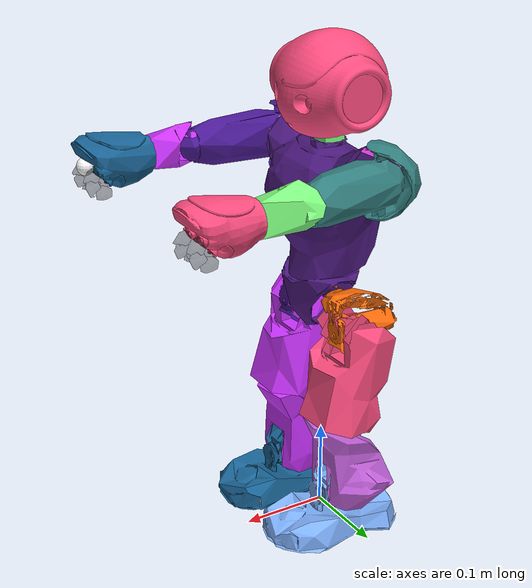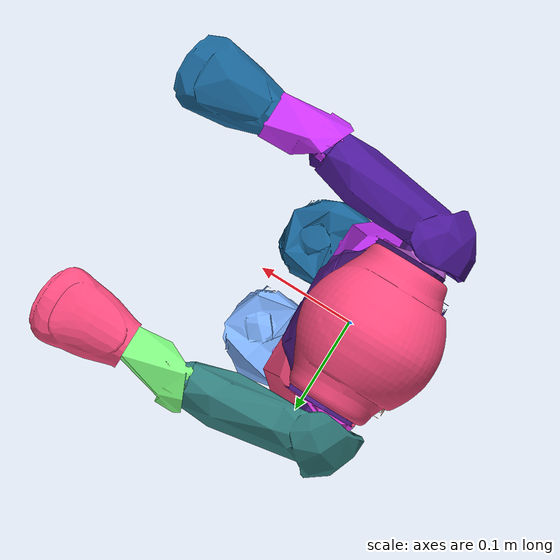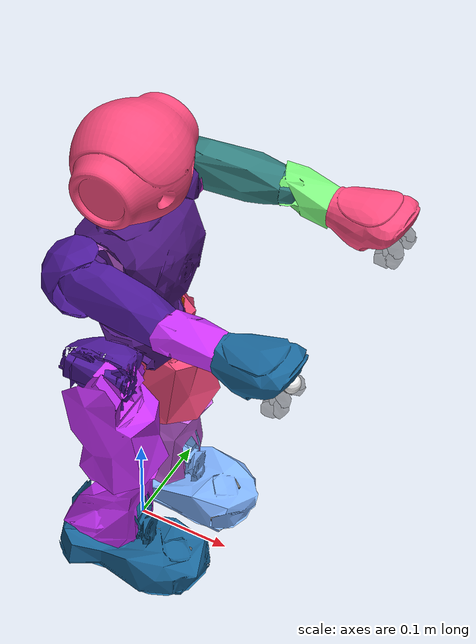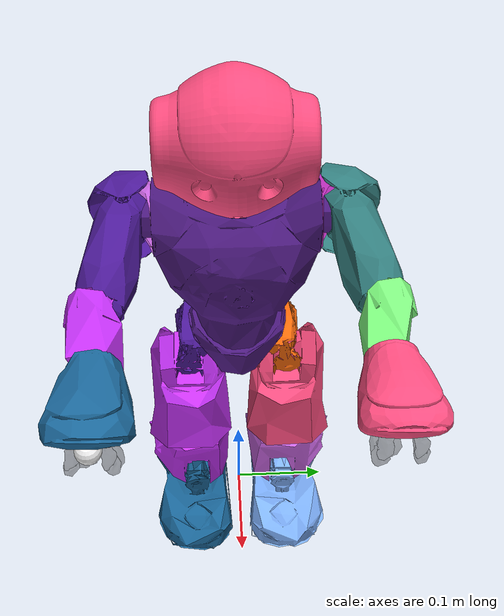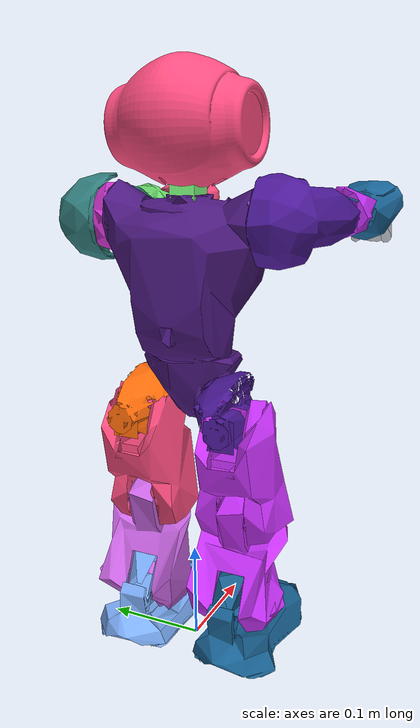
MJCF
<mujoco model="nao">
    <compiler angle="radian" meshdir="./meshes/V40/" autolimits="true" discardvisual="false"/>
    <statistic meansize="0.144785" extent="1.23314" center="0.025392 2.0634e-05 -0.245975"/>
    <default>
        <joint damping="0.5" armature="0.01" frictionloss="0.1"/>
    </default>
    <asset>
        <mesh name="Torso_0.10" file="Torso_0.10.stl" scale="0.1 0.1 0.1" />
        <mesh name="HeadYaw_0.10" file="HeadYaw_0.10.stl" scale="0.1 0.1 0.1" />
        <mesh name="HeadPitch_0.10" file="HeadPitch_0.10.stl" scale="0.1 0.1 0.1" />
        <mesh name="LHipYawPitch_0.10" file="LHipYawPitch_0.10.stl" scale="0.1 0.1 0.1" />
        <mesh name="LHipRoll_0.10" file="LHipRoll_0.10.stl" scale="0.1 0.1 0.1" />
        <mesh name="LHipPitch_0.10" file="LHipPitch_0.10.stl" scale="0.1 0.1 0.1" />
        <mesh name="LKneePitch_0.10" file="LKneePitch_0.10.stl" scale="0.1 0.1 0.1" />
        <mesh name="LAnklePitch_0.10" file="LAnklePitch_0.10.stl" scale="0.1 0.1 0.1" />
        <mesh name="LAnkleRoll_0.10" file="LAnkleRoll_0.10.stl" scale="0.1 0.1 0.1" />
        <mesh name="RHipYawPitch_0.10" file="RHipYawPitch_0.10.stl" scale="0.1 0.1 0.1" />
        <mesh name="RHipRoll_0.10" file="RHipRoll_0.10.stl" scale="0.1 0.1 0.1" />
        <mesh name="RHipPitch_0.10" file="RHipPitch_0.10.stl" scale="0.1 0.1 0.1" />
        <mesh name="RKneePitch_0.10" file="RKneePitch_0.10.stl" scale="0.1 0.1 0.1" />
        <mesh name="RAnklePitch_0.10" file="RAnklePitch_0.10.stl" scale="0.1 0.1 0.1" />
        <mesh name="RAnkleRoll_0.10" file="RAnkleRoll_0.10.stl" scale="0.1 0.1 0.1" />
        <mesh name="LShoulderPitch_0.10" file="LShoulderPitch_0.10.stl" scale="0.1 0.1 0.1" />
        <mesh name="LShoulderRoll_0.10" file="LShoulderRoll_0.10.stl" scale="0.1 0.1 0.1" />
        <mesh name="LElbowRoll_0.10" file="LElbowRoll_0.10.stl" scale="0.1 0.1 0.1" />
        <mesh name="LWristYaw_0.10" file="LWristYaw_0.10.stl" scale="0.1 0.1 0.1" />
        <mesh name="LFinger21_0.10" file="LFinger21_0.10.stl" scale="0.1 0.1 0.1" />
        <mesh name="LFinger22_0.10" file="LFinger22_0.10.stl" scale="0.1 0.1 0.1" />
        <mesh name="LFinger23_0.10" file="LFinger23_0.10.stl" scale="0.1 0.1 0.1" />
        <mesh name="LFinger11_0.10" file="LFinger11_0.10.stl" scale="0.1 0.1 0.1" />
        <mesh name="LFinger12_0.10" file="LFinger12_0.10.stl" scale="0.1 0.1 0.1" />
        <mesh name="LFinger13_0.10" file="LFinger13_0.10.stl" scale="0.1 0.1 0.1" />
        <mesh name="LThumb1_0.10" file="LThumb1_0.10.stl" scale="0.1 0.1 0.1" />
        <mesh name="LThumb2_0.10" file="LThumb2_0.10.stl" scale="0.1 0.1 0.1" />
        <mesh name="RShoulderPitch_0.10" file="RShoulderPitch_0.10.stl" scale="0.1 0.1 0.1" />
        <mesh name="RShoulderRoll_0.10" file="RShoulderRoll_0.10.stl" scale="0.1 0.1 0.1" />
        <mesh name="RElbowRoll_0.10" file="RElbowRoll_0.10.stl" scale="0.1 0.1 0.1" />
        <mesh name="RWristYaw_0.10" file="RWristYaw_0.10.stl" scale="0.1 0.1 0.1" />
        <mesh name="RFinger21_0.10" file="RFinger21_0.10.stl" scale="0.1 0.1 0.1" />
        <mesh name="RFinger22_0.10" file="RFinger22_0.10.stl" scale="0.1 0.1 0.1" />
        <mesh name="RFinger23_0.10" file="RFinger23_0.10.stl" scale="0.1 0.1 0.1" />
        <mesh name="RFinger11_0.10" file="RFinger11_0.10.stl" scale="0.1 0.1 0.1" />
        <mesh name="RFinger12_0.10" file="RFinger12_0.10.stl" scale="0.1 0.1 0.1" />
        <mesh name="RFinger13_0.10" file="RFinger13_0.10.stl" scale="0.1 0.1 0.1" />
        <mesh name="RThumb1_0.10" file="RThumb1_0.10.stl" scale="0.1 0.1 0.1" />
        <mesh name="RThumb2_0.10" file="RThumb2_0.10.stl" scale="0.1 0.1 0.1" />
        <texture builtin="checker" height="100" name="texplane" rgb1="0 0 0" rgb2="0.8 0.8 0.8" type="2d" width="100"/>
        <material name="MatPlane" reflectance="0.5" shininess="1" specular="1" texrepeat="60 60" texture="texplane"/>
    </asset>
    <worldbody>
        <body name="torso" pos="0 0 0.335" >
        <inertial pos="0.00370371 -4.6229e-05 0.0443536" quat="0.999942 -6.0823e-05 -0.0105352 0.00208575" mass="9.12902" diaginertia="0.0307424 0.0269618 0.0139481" />
        <joint type="free"/>
        <geom type="mesh" rgba="0.3 0.1 0.5 1" mesh="Torso_0.10" name="torso"/>
        <site name="imu" pos="0 0 0"/>
        <body name="Neck" pos="0 0 0.1265" >
            <inertial pos="8.30672e-09 -1.22139e-08 0.000122854" quat="0 0.707107 0 0.707107" mass="0.090746" diaginertia="1.15255e-05 8.6441e-06 8.6441e-06" />
            <joint name="HeadYaw" pos="0 0 0" axis="0 0 1" limited="true" range="-2.08567 2.08567" />
            <geom type="mesh" rgba="0.5 1 0.5 1" mesh="HeadYaw_0.10" />
            <body name="Head" pos="0 0 0">
                <inertial pos="-0.000379894 -4.82308e-05 0.0560861" quat="0.562244 0.562237 -0.42882 0.428818" mass="5.25935" diaginertia="0.0088094 0.00839445 0.00702492" />
                <joint name="HeadPitch" pos="0 0 0" axis="0 1 0" limited="true" range="-0.671952 0.514872" />
                <geom type="mesh" rgba="1 0.3 0.5 1" mesh="HeadPitch_0.10" />
                <body name="gaze" pos="0.05871 0 0.06364">
                    <inertial pos="0.05871 0 0.06364" mass="0" diaginertia="0 0 0" />
                </body>
                <body name="HeadTouchFront_frame" pos="0.0312 0 0.1014" quat="0.82924 0 -0.558893 0">
                    <inertial pos="0.0312 0 0.1014" quat="0.82924 0 -0.558893 0" mass="0" diaginertia="0 0 0" />
                </body>
                <body name="CameraBottom_frame" pos="0.05071 0 0.01774" quat="0.940585 0 0.339559 0">
                    <inertial pos="0.05071 0 0.01774" quat="0.940585 0 0.339559 0" mass="0" diaginertia="0 0 0" />
                    <body name="CameraBottom_optical_frame" pos="0 0 0" quat="0.5 -0.5 0.5 -0.5">
                        <inertial pos="0 0 0" quat="0.5 -0.5 0.5 -0.5" mass="0" diaginertia="0 0 0" />
                    </body>
                </body>
                <body name="CameraTop_frame" pos="0.05871 0 0.06364" quat="0.999945 0 0.0104716 0">
                    <inertial pos="0.05871 0 0.06364" quat="0.999945 0 0.0104716 0" mass="0" diaginertia="0 0 0" />
                    <body name="CameraTop_optical_frame" pos="0 0 0" quat="0.5 -0.5 0.5 -0.5">
                        <inertial pos="0 0 0" quat="0.5 -0.5 0.5 -0.5" mass="0" diaginertia="0 0 0" />
                    </body>
                </body>
                <body name="LInfraRed_frame" pos="0.0441 0.0257 0.0466">
                    <inertial pos="0.0441 0.0257 0.0466" mass="0" diaginertia="0 0 0" />
                </body>
                <body name="HeadTouchRear_frame" pos="-0.0257 0 0.1045" quat="0.618313 2.22395e-07 -0.785932 -2.22395e-07">
                    <inertial pos="-0.0257 0 0.1045" quat="0.618313 2.22395e-07 -0.785932 -2.22395e-07" mass="0" diaginertia="0 0 0" />
                </body>
                <body name="HeadTouchMiddle_frame" pos="0.001 0 0.1099" quat="0.707105 5.93571e-12 -0.707109 -5.93571e-12">
                    <inertial pos="0.001 0 0.1099" quat="0.707105 5.93571e-12 -0.707109 -5.93571e-12" mass="0" diaginertia="0 0 0" />
                </body>
                <body name="RInfraRed_frame" pos="0.0441 -0.0257 0.0466">
                    <inertial pos="0.0441 -0.0257 0.0466" mass="0" diaginertia="0 0 0" />
                </body>
            </body>
        </body>
        <body name="LPelvis" pos="0 0.05 -0.085">
            <inertial pos="-0.0128803 -0.00708774 0.0134709" quat="0.433195 0.551012 0.2317 0.674568" mass="0.611599" diaginertia="0.000387067 0.000291373 0.000173947" />
            <joint name="LHipYawPitch" pos="0 0 0" axis="0 0.707107 -0.707107" limited="true" range="-1.14529 0.740718" />
            <geom type="mesh" rgba="1 0.423529 0.0392157 1" mesh="LHipYawPitch_0.10" />
            <body name="LHip" pos="0 0 0">
                <inertial pos="-0.0169128 -0.000488904 -0.00699163" quat="0.501404 0.490618 0.512214 0.495505" mass="0.209205" diaginertia="7.40981e-05 6.66862e-05 2.17666e-05" />
                <joint name="LHipRoll" pos="0 0 0" axis="1 0 0" limited="true" range="-0.379435 0.79046" />
                <geom type="mesh" rgba="1 0.423529 0.0392157 1" mesh="LHipRoll_0.10" />
                <body name="LThigh" pos="0 0 0">
                    <inertial pos="0.00162372 0.00149476 -0.0518995" quat="0.993119 -0.00358341 -0.117056 0.000122069" mass="2.95157" diaginertia="0.00455217 0.00411878 0.00210523" />
                    <joint name="LHipPitch" pos="0 0 0" axis="0 1 0" limited="true" range="-1.53589 0.48398" />
                    <geom type="mesh" rgba="1 0.3 0.5 1" mesh="LHipPitch_0.10" />
                    <body name="LTibia" pos="0 0 -0.1">
                        <inertial pos="0.00330151 0.00251579 -0.0628225" quat="0.996053 0.0189271 0.0852725 0.0157606" mass="2.28319" diaginertia="0.00337036 0.00289491 0.00133895" />
                        <joint name="LKneePitch" pos="0 0 0" axis="0 1 0" limited="true" range="-0.0923279 2.11255" />
                        <geom type="mesh" rgba="0.8 0.4 0.9 1" mesh="LKneePitch_0.10" />
                        <body name="LAnklePitch" pos="0 0 -0.1029">
                            <inertial pos="8.6838e-05 0.000306029 0.0100665" quat="0.46591 0.527213 0.543286 0.458055" mass="0.412051" diaginertia="0.000179707 0.00013171 9.56695e-05" />
                            <joint name="LAnklePitch" pos="0 0 0" axis="0 1 0" limited="true" range="-1.18944 0.922581" />
                            <geom type="mesh" rgba="0.5 0.7 1 1" mesh="LAnklePitch_0.10" />
                            <body name="l_ankle" pos="0 0 0">
                                <inertial pos="0.0221765 0.00251761 -0.0253037" quat="0.0468406 0.747433 0.0373057 0.661633" mass="2.46597" diaginertia="0.00538819 0.00501931 0.0011678" />
                                <joint name="LAnkleRoll" pos="0 0 0" axis="1 0 0" limited="true" range="-0.397761 0.768992" />
                                <geom type="mesh" rgba="0.5 0.7 1 1" mesh="LAnkleRoll_0.10" />
                                <body name="l_sole" pos="0 0 -0.04511">
                                    <inertial pos="0 0 -0.04511" mass="0" diaginertia="0 0 0" />
                                </body>
                                <body name="LFootBumperRight_frame" pos="0.0876 -0.014 -0.0353">
                                    <inertial pos="0.0876 -0.014 -0.0353" mass="0" diaginertia="0 0 0" />
                                </body>
                                <body name="LFsrFR_frame" pos="0.07025 -0.0231 -0.04511">
                                    <inertial pos="0 0 0" mass="0.00305027" diaginertia="3.17737e-08 3.17737e-08 5.08379e-08" />
                                    <geom size="0.005 0.005 0.0025" type="box" />
                                </body>
                                <body name="LFsrRR_frame" pos="-0.02965 -0.0191 -0.04511">
                                    <inertial pos="0 0 0" mass="0.00305027" diaginertia="3.17737e-08 3.17737e-08 5.08379e-08" />
                                    <geom size="0.005 0.005 0.0025" type="box" />
                                </body>
                                <body name="LFsrFL_frame" pos="0.07025 0.0299 -0.04511">
                                    <inertial pos="0 0 0" mass="0.00305027" diaginertia="3.17737e-08 3.17737e-08 5.08379e-08" />
                                    <geom size="0.005 0.005 0.0025" type="box" />
                                </body>
                                <body name="LFsrRL_frame" pos="-0.03025 0.0299 -0.04511">
                                    <inertial pos="0 0 0" mass="0.00305027" diaginertia="3.17737e-08 3.17737e-08 5.08379e-08" />
                                    <geom size="0.005 0.005 0.0025" type="box" />
                                </body>
                                <body name="LFootBumperLeft_frame" pos="0.0876 0.019 -0.0353">
                                    <inertial pos="0.0876 0.019 -0.0353" mass="0" diaginertia="0 0 0" />
                                </body>
                            </body>
                        </body>
                    </body>
                </body>
            </body>
        </body>
        <body name="RPelvis" pos="0 -0.05 -0.085">
            <inertial pos="-0.012943 0.00725106 0.0138017" quat="0.677718 0.226723 0.550219 0.431919" mass="0.599907" diaginertia="0.000377649 0.000285519 0.000167268" />
            <joint name="RHipYawPitch" pos="0 0 0" axis="0 0.707107 0.707107" limited="true" range="-1.14529 0.740718" />
            <geom type="mesh" rgba="0.3 0.1 0.6 1" mesh="RHipYawPitch_0.10" />
            <body name="RHip" pos="0 0 0">
                <inertial pos="-0.0169298 -0.00139763 -0.00698282" quat="0.510087 0.484407 0.518022 0.486636" mass="0.208296" diaginertia="7.38725e-05 6.63941e-05 2.16102e-05" />
                <joint name="RHipRoll" pos="0 0 0" axis="1 0 0" limited="true" range="-0.79046 0.379435" />
                <geom type="mesh" rgba="0.3 0.1 0.6 1" mesh="RHipRoll_0.10" />
                <body name="RThigh" pos="0 0 0">
                    <inertial pos="0.00182967 -0.00149209 -0.0523413" quat="0.993317 0.0125884 -0.11457 -0.00598517" mass="2.93957" diaginertia="0.00448244 0.00405421 0.00210433" />
                    <joint name="RHipPitch" pos="0 0 0" axis="0 1 0" limited="true" range="-1.53589 0.48398" />
                    <geom type="mesh" rgba="0.8 0.2 1 1" mesh="RHipPitch_0.10" />
                    <body name="RTibia" pos="0 0 -0.1">
                        <inertial pos="0.00319121 -0.00240692 -0.0633783" quat="0.996198 -0.0186793 0.0844245 -0.0106731" mass="2.27994" diaginertia="0.00335227 0.00285703 0.00134993" />
                        <joint name="RKneePitch" pos="0 0 0" axis="0 1 0" limited="true" range="-0.0923279 2.11255" />
                        <geom type="mesh" rgba="0.8 0.2 1 1" mesh="RKneePitch_0.10" />
                        <body name="RAnklePitch" pos="0 0 -0.1029">
                            <inertial pos="0.00232181 -4.79787e-05 0.0171042" quat="0.461248 0.533738 0.597083 0.381924" mass="0.374293" diaginertia="0.000159198 0.000120062 7.79115e-05" />
                            <joint name="RAnklePitch" pos="0 0 0" axis="0 1 0" limited="true" range="-1.1863 0.932006" />
                            <geom type="mesh" rgba="0.1 0.4 0.6 1" mesh="RAnklePitch_0.10" />
                            <body name="r_ankle" pos="0 0 0">
                                <inertial pos="0.0229928 -0.00257944 -0.0257303" quat="-0.0427709 0.745477 -0.0318629 0.664394" mass="2.47737" diaginertia="0.00546571 0.00507821 0.00117884" />
                                <joint name="RAnkleRoll" pos="0 0 0" axis="1 0 0" limited="true" range="-0.768992 0.397761" />
                                <geom type="mesh" rgba="0.1 0.4 0.6 1" mesh="RAnkleRoll_0.10" />
                                <body name="r_sole" pos="0 0 -0.04511">
                                    <inertial pos="0 0 -0.04511" mass="0" diaginertia="0 0 0" />
                                </body>
                                <body name="RFsrRL_frame" pos="-0.03025 0.0191 -0.04511">
                                    <inertial pos="0 0 0" mass="0.00305027" diaginertia="3.17737e-08 3.17737e-08 5.08379e-08" />
                                    <geom size="0.005 0.005 0.0025" type="box" />
                                </body>
                                <body name="RFsrRR_frame" pos="-0.02965 -0.0299 -0.04511">
                                    <inertial pos="0 0 0" mass="0.00305027" diaginertia="3.17737e-08 3.17737e-08 5.08379e-08" />
                                    <geom size="0.005 0.005 0.0025" type="box" />
                                </body>
                                <body name="RFootBumperRight_frame" pos="0.0876 -0.019 -0.0353">
                                    <inertial pos="0.0876 -0.019 -0.0353" mass="0" diaginertia="0 0 0" />
                                </body>
                                <body name="RFsrFR_frame" pos="0.07025 -0.0299 -0.04511">
                                    <inertial pos="0 0 0" mass="0.00305027" diaginertia="3.17737e-08 3.17737e-08 5.08379e-08" />
                                    <geom size="0.005 0.005 0.0025" type="box" />
                                </body>
                                <body name="RFootBumperLeft_frame" pos="0.0876 0.014 -0.0353">
                                    <inertial pos="0.0876 0.014 -0.0353" mass="0" diaginertia="0 0 0" />
                                </body>
                                <body name="RFsrFL_frame" pos="0.07025 0.0231 -0.04511">
                                    <inertial pos="0 0 0" mass="0.00305027" diaginertia="3.17737e-08 3.17737e-08 5.08379e-08" />
                                    <geom size="0.005 0.005 0.0025" type="box" />
                                </body>
                            </body>
                        </body>
                    </body>
                </body>
            </body>
        </body>
        <body name="LShoulder" pos="0 0.098 0.1" quat="1 0 0 0">
            <inertial pos="-0.0147798 -0.0177741 -0.000761746" quat="0.786467 0.0218088 -0.018285 -0.616976" mass="0.182847" diaginertia="7.30177e-05 5.28928e-05 2.56637e-05" />
            <joint name="LShoulderPitch" pos="0 0 0" axis="0 1 0" limited="true" range="-2.08567 2.08567" />
            <geom type="mesh" rgba="0.8 0.2 0.8 1" mesh="LShoulderPitch_0.10" />
            <body name="LBicep" pos="0 0 0">
                <inertial pos="0.0212509 0.00488998 0.000310127" quat="0.466845 0.469092 0.526354 0.533817" mass="1.79641" diaginertia="0.00363826 0.00338653 0.00065475" />
                <joint name="LShoulderRoll" pos="0 0 0" axis="0 0 1" limited="true" range="-0.314159 1.32645" />
                <geom type="mesh" rgba="0.2 0.5 0.5 1" mesh="LShoulderRoll_0.10" />
                <body name="LElbow" pos="0.105 0.015 0">
                    <inertial pos="-0.02744 0 -0.00014" quat="-0.000545392 0.711779 -0.000696018 0.702403" mass="0.395499" diaginertia="0.000168578 0.000162384 3.41143e-05" />
                    <joint name="LElbowYaw" pos="0 0 0" axis="1 0 0" limited="true" range="-2.08567 2.08567" />
                    <body name="LForeArm" pos="0 0 0">
                        <inertial pos="0.0217609 0.00292434 0.00220744" quat="0.509877 0.677216 0.322959 0.420835" mass="0.438641" diaginertia="0.000165863 0.00014172 0.00010203" />
                        <joint name="LElbowRoll" pos="0 0 0" axis="0 0 1" limited="true" range="-1.54462 -0.0349066" />
                        <geom type="mesh" rgba="0.5 1 0.5 1" mesh="LElbowRoll_0.10" />
                        <body name="l_wrist" pos="0.05595 0 0">
                            <inertial pos="0.0440184 -2.52556e-05 0.00469772" quat="0.00671586 0.513524 0.00738942 0.858017" mass="0.952048" diaginertia="0.000589689 0.000528019 0.000364717" />
                            <joint name="LWristYaw" pos="0 0 0" axis="1 0 0" limited="true" range="-1.82387 1.82387" />
                            <geom type="mesh" rgba="1 0.3 0.5 1" mesh="LWristYaw_0.10" />
                            <body name="l_gripper" pos="0.05775 0 -0.01231">
                                <inertial pos="0 0 0" mass="1.22011e-05" diaginertia="6.7106e-09 6.7106e-09 6.7106e-09" />
                                <joint name="LHand" pos="0 0 0" axis="1 0 0" limited="true" range="0 1" />
                            </body>
                            <body name="LHandTouchLeft_frame" pos="0.032 0.025 0.003" quat="0.707105 0 0 0.707108">
                                <inertial pos="0.032 0.025 0.003" quat="0.707105 0 0 0.707108" mass="0" diaginertia="0 0 0" />
                            </body>
                            <body name="LHandTouchBack_frame" pos="0.038 0 0.025" quat="-0.707108 1.87637e-06 0.707105 1.87637e-06">
                                <inertial pos="0.038 0 0.025" quat="-0.707108 1.87637e-06 0.707105 1.87637e-06" mass="0" diaginertia="0 0 0" />
                            </body>
                            <body name="LHandTouchRight_frame" pos="0.035 -0.025 0.0035" quat="0.707105 0 0 -0.707108">
                                <inertial pos="0.035 -0.025 0.0035" quat="0.707105 0 0 -0.707108" mass="0" diaginertia="0 0 0" />
                            </body>
                            <body name="LFinger21_link" pos="0.06907 -0.01157 -0.00304" quat="0.672286 0.564114 0.308141 -0.367227">
                                <inertial pos="0.00881001 -3.5261e-07 0.000460066" quat="0.0927872 0.633796 0.0284959 0.767386" mass="0.00932716" diaginertia="2.89089e-07 2.07231e-07 1.87427e-07" />
                                <joint name="LFinger21" pos="0 0 0" axis="0 0 1" />
                                <geom type="mesh" rgba="0.1 0.1 0.1 0.4" mesh="LFinger21_0.10" />
                                <body name="LFinger22_link" pos="0.01436 0 0" quat="0.877607 0 0 -0.479381">
                                    <inertial pos="0.00854485 -9.9436e-05 0.000483262" quat="0.11741 0.630555 0.00225006 0.767209" mass="0.0093255" diaginertia="2.89287e-07 2.07724e-07 1.86943e-07" />
                                    <joint name="LFinger22" pos="0 0 0" axis="0 0 1" />
                                    <geom type="mesh" rgba="0.1 0.1 0.1 0.4" mesh="LFinger22_0.10" />
                                    <body name="LFinger23_link" pos="0.01436 0 0" quat="0.877607 0 0 -0.479381">
                                        <inertial pos="0.00860938 -0.000273406 0.000175458" quat="0.0467005 0.710615 0.0483532 0.700363" mass="0.0090357" diaginertia="2.82977e-07 2.15498e-07 1.64221e-07" />
                                        <joint name="LFinger23" pos="0 0 0" axis="0 0 1" />
                                        <geom type="mesh" rgba="0.1 0.1 0.1 0.4" mesh="LFinger23_0.10" />
                                    </body>
                                </body>
                            </body>
                            <body name="LFinger11_link" pos="0.06907 0.01157 -0.00304" quat="0.564115 0.672285 0.367228 -0.30814">
                                <inertial pos="0.00853596 -0.000339914 0.000170124" quat="0.00656248 0.640359 -0.133049 0.756436" mass="0.00934584" diaginertia="2.89949e-07 2.08267e-07 1.87716e-07" />
                                <joint name="LFinger11" pos="0 0 0" axis="0 0 1" />
                                <geom type="mesh" rgba="0.1 0.1 0.1 0.4" mesh="LFinger11_0.10" />
                                <body name="LFinger12_link" pos="0.01436 0 0" quat="0.877607 0 0 -0.479381">
                                    <inertial pos="0.00851477 -0.000540798 0.000316328" quat="0.00479288 0.641516 -0.129224 0.756132" mass="0.00931936" diaginertia="2.89039e-07 2.07549e-07 1.86708e-07" />
                                    <joint name="LFinger12" pos="0 0 0" axis="0 0 1" />
                                    <geom type="mesh" rgba="0.1 0.1 0.1 0.4" mesh="LFinger12_0.10" />
                                    <body name="LFinger13_link" pos="0.01436 0 0" quat="0.877607 0 0 -0.479381">
                                        <inertial pos="0.00848591 -0.000538296 -0.000114859" quat="-0.0767885 0.70615 -0.0816382 0.699136" mass="0.00901582" diaginertia="2.82009e-07 2.12832e-07 1.65102e-07" />
                                        <joint name="LFinger13" pos="0 0 0" axis="0 0 1" />
                                        <geom type="mesh" rgba="0.1 0.1 0.1 0.4" mesh="LFinger13_0.10" />
                                    </body>
                                </body>
                            </body>
                            <body name="LThumb1_link" pos="0.04895 0 -0.02638" quat="0.706908 -0.70691 0.0167209 0.016721">
                                <inertial pos="0.00497911 0.000265815 -0.00591955" quat="0.988554 0.0920316 -0.118432 0.0162819" mass="0.00932644" diaginertia="2.8785e-07 2.06916e-07 1.87364e-07" />
                                <joint name="LThumb1" pos="0 0 0" axis="0 0 1" />
                                <geom type="mesh" rgba="0.1 0.1 0.1 0.4" mesh="LThumb1_0.10" />
                                <body name="LThumb2_link" pos="0.01436 0 0" quat="0.877607 0 0 -0.479381">
                                    <inertial pos="0.00259174 6.32101e-05 -0.00888251" quat="0.963351 0.000866356 -0.267959 -0.0122959" mass="0.00906337" diaginertia="2.83912e-07 2.16711e-07 1.64842e-07" />
                                    <joint name="LThumb2" pos="0 0 0" axis="0 0 1" />
                                    <geom type="mesh" rgba="0.1 0.1 0.1 0.4" mesh="LThumb2_0.10" />
                                </body>
                            </body>
                        </body>
                    </body>
                </body>
            </body>
        </body>
        <body name="RShoulder" pos="0 -0.098 0.1" quat="1 0 0 0">
            <inertial pos="-0.0146753 0.0178377 0.000381054" quat="0.611486 -0.00891285 -0.0112889 0.791124" mass="0.183785" diaginertia="7.45353e-05 5.40081e-05 2.59944e-05" />
            <joint name="RShoulderPitch" pos="0 0 0" axis="0 1 0" limited="true" range="-2.08567 2.08567" />
            <geom type="mesh" rgba="0.8 0.4 0.9 1" mesh="RShoulderPitch_0.10" />
            <body name="RBicep" pos="0 0 0">
                <inertial pos="0.0213201 -0.00466808 0.0004386" quat="0.527557 0.52235 0.47264 0.474811" mass="1.7996" diaginertia="0.00363268 0.00337871 0.000658873" />
                <joint name="RShoulderRoll" pos="0 0 0" axis="0 0 1" limited="true" range="-1.32645 0.314159" />
                <geom type="mesh" rgba="0.3 0.1 0.6 1" mesh="RShoulderRoll_0.10" />
                <body name="RElbow" pos="0.105 -0.015 0">
                    <inertial pos="-0.02744 0 -0.00014" quat="-0.000545392 0.711779 -0.000696018 0.702403" mass="0.395499" diaginertia="0.000168578 0.000162384 3.41143e-05" />
                    <joint name="RElbowYaw" pos="0 0 0" axis="1 0 0" limited="true" range="-2.08567 2.08567" />
                    <body name="RForeArm" pos="0 0 0">
                        <inertial pos="0.0235942 -0.00369779 0.00274973" quat="0.397369 0.35311 0.66416 0.525645" mass="0.455913" diaginertia="0.000171173 0.000151629 0.000108766" />
                        <joint name="RElbowRoll" pos="0 0 0" axis="0 0 1" limited="true" range="0.0349066 1.54462" />
                        <geom type="mesh" rgba="0.8 0.2 1 1" mesh="RElbowRoll_0.10" />
                        <body name="r_wrist" pos="0.05595 0 0">
                            <inertial pos="0.0432841 -3.00946e-05 0.00454347" quat="0.0130028 0.518963 0.00333335 0.854691" mass="0.93576" diaginertia="0.000578664 0.000517583 0.000351545" />
                            <joint name="RWristYaw" pos="0 0 0" axis="1 0 0" limited="true" range="-1.82387 1.82387" />
                            <geom type="mesh" rgba="0.1 0.4 0.6 1" mesh="RWristYaw_0.10" />
                            <body name="r_gripper" pos="0.05775 0 -0.01213">
                                <inertial pos="0 0 0" mass="1.22011e-05" diaginertia="6.7106e-09 6.7106e-09 6.7106e-09" />
                                <joint name="RHand" pos="0 0 0" axis="1 0 0" limited="true" range="0 1" />
                            </body>
                            <body name="RHandTouchRight_frame" pos="0.035 -0.025 0.0035" quat="0.707105 0 0 -0.707108">
                                <inertial pos="0.035 -0.025 0.0035" quat="0.707105 0 0 -0.707108" mass="0" diaginertia="0 0 0" />
                            </body>
                            <body name="RHandTouchBack_frame" pos="0.038 0 0.025" quat="-0.707108 1.87637e-06 0.707105 1.87637e-06">
                                <inertial pos="0.038 0 0.025" quat="-0.707108 1.87637e-06 0.707105 1.87637e-06" mass="0" diaginertia="0 0 0" />
                            </body>
                            <body name="RHandTouchLeft_frame" pos="0.032 0.025 0.003" quat="0.707105 0 0 0.707108">
                                <inertial pos="0.032 0.025 0.003" quat="0.707105 0 0 0.707108" mass="0" diaginertia="0 0 0" />
                            </body>
                            <body name="RFinger21_link" pos="0.06907 -0.01157 -0.00304" quat="0.672286 0.564114 0.308141 -0.367227">
                                <inertial pos="0.00863736 0.000185977 1.64388e-05" quat="-0.0910756 0.633824 -0.0291972 0.767541" mass="0.0093394" diaginertia="2.89187e-07 2.07156e-07 1.88181e-07" />
                                <joint name="RFinger21" pos="0 0 0" axis="0 0 1" />
                                <geom type="mesh" rgba="0.1 0.1 0.1 0.4" mesh="RFinger21_0.10" />
                                <body name="RFinger22_link" pos="0.01436 0 0" quat="0.877607 0 0 -0.479381">
                                    <inertial pos="0.00844989 -0.000471502 0.000379654" quat="-0.11611 0.630939 -0.00405049 0.767084" mass="0.00931936" diaginertia="2.89039e-07 2.07549e-07 1.86708e-07" />
                                    <joint name="RFinger22" pos="0 0 0" axis="0 0 1" />
                                    <geom type="mesh" rgba="0.1 0.1 0.1 0.4" mesh="RFinger22_0.10" />
                                    <body name="RFinger23_link" pos="0.01436 0 0" quat="0.877607 0 0 -0.479381">
                                        <inertial pos="0.00854807 -0.000314659 0.00014057" quat="-0.0663958 0.707447 -0.0375616 0.702638" mass="0.00911458" diaginertia="2.88584e-07 2.20008e-07 1.65953e-07" />
                                        <joint name="RFinger23" pos="0 0 0" axis="0 0 1" />
                                        <geom type="mesh" rgba="0.1 0.1 0.1 0.4" mesh="RFinger23_0.10" />
                                    </body>
                                </body>
                            </body>
                            <body name="RFinger11_link" pos="0.06907 0.01157 -0.00304" quat="0.564115 0.672285 0.367228 -0.30814">
                                <inertial pos="0.00903321 -0.000223157 0.000206259" quat="0.00825309 0.642265 0.118529 0.757217" mass="0.00926401" diaginertia="2.85933e-07 2.0779e-07 1.82763e-07" />
                                <joint name="RFinger11" pos="0 0 0" axis="0 0 1" />
                                <geom type="mesh" rgba="0.1 0.1 0.1 0.4" mesh="RFinger11_0.10" />
                                <body name="RFinger12_link" pos="0.01436 0 0" quat="0.877607 0 0 -0.479381">
                                    <inertial pos="0.00740736 -4.2145e-05 3.50086e-05" quat="0.018982 0.639915 0.106374 0.760811" mass="0.00934554" diaginertia="2.89434e-07 2.07315e-07 1.88431e-07" />
                                    <joint name="RFinger12" pos="0 0 0" axis="0 0 1" />
                                    <geom type="mesh" rgba="0.1 0.1 0.1 0.4" mesh="RFinger12_0.10" />
                                    <body name="RFinger13_link" pos="0.01436 0 0" quat="0.877607 0 0 -0.479381">
                                        <inertial pos="0.00824432 3.0634e-05 -9.09988e-05" quat="0.0769785 0.705516 0.0821836 0.699691" mass="0.00899706" diaginertia="2.80311e-07 2.13423e-07 1.63303e-07" />
                                        <joint name="RFinger13" pos="0 0 0" axis="0 0 1" />
                                        <geom type="mesh" rgba="0.1 0.1 0.1 0.4" mesh="RFinger13_0.10" />
                                    </body>
                                </body>
                            </body>
                            <body name="RThumb1_link" pos="0.04895 0 -0.02638" quat="0.706908 -0.70691 0.0167209 0.016721">
                                <inertial pos="0.00605392 5.45792e-05 -0.00555008" quat="0.988351 -0.0944312 -0.118218 -0.0164253" mass="0.00933258" diaginertia="2.88099e-07 2.07093e-07 1.87599e-07" />
                                <joint name="RThumb1" pos="0 0 0" axis="0 0 1" />
                                <geom type="mesh" rgba="0.1 0.1 0.1 0.4" mesh="RThumb1_0.10" />
                                <body name="RThumb2_link" pos="0.01436 0 0" quat="0.877607 0 0 -0.479381">
                                    <inertial pos="0.00294165 -0.000445346 -0.00797671" quat="0.962667 0.0074404 -0.270146 0.0154311" mass="0.00904133" diaginertia="2.84681e-07 2.16067e-07 1.64498e-07" />
                                    <joint name="RThumb2" pos="0 0 0" axis="0 0 1" />
                                    <geom type="mesh" rgba="0.1 0.1 0.1 0.4" mesh="RThumb2_0.10" />
                                </body>
                            </body>
                            <site name="reacher" pos="0.075 0 -0.001" size="0.01 0.01 0.01" rgba="1 1 1 1"></site>
                        </body>
                    </body>
                </body>
            </body>
        </body>
        <body name="ImuTorsoAccelerometer_frame" pos="-0.008 0.00606 0.027">
            <inertial pos="-0.008 0.00606 0.027" mass="0" diaginertia="0 0 0" />
        </body>
        <body name="RSonar_frame" pos="0.00558253 -0.0192068 0.0623853" quat="0.980564 0.00660077 0.0209379 -0.194968">
            <inertial pos="0.00558253 -0.0192068 0.0623853" quat="0.980564 0.00660077 0.0209379 -0.194968" mass="0" diaginertia="0 0 0" />
        </body>
        <body name="LSonar_frame" pos="0.00558253 0.0192068 0.0623853" quat="0.980564 -0.00660077 0.0209379 0.194968">
            <inertial pos="0.00558253 0.0192068 0.0623853" quat="0.980564 -0.00660077 0.0209379 0.194968" mass="0" diaginertia="0 0 0" />
        </body>
        <body name="ImuTorsoGyrometer_frame" pos="-0.008 0.006 0.029">
            <inertial pos="-0.008 0.006 0.029" mass="0" diaginertia="0 0 0" />
        </body>
        <body name="ChestButton_frame" pos="0.049871 0.001588 0.055163">
            <inertial pos="0.049871 0.001588 0.055163" mass="0" diaginertia="0 0 0" />
        </body>
    </body>

    </worldbody>
    <actuator>
        <motor ctrllimited="true" ctrlrange="-2.08567 2.08567" joint="HeadYaw" gear="10"/>
        <motor ctrllimited="true" ctrlrange="-0.671952 0.514872" joint="HeadPitch" gear="10"/>
        <motor ctrllimited="true" ctrlrange="-1.14529 0.740718" joint="LHipYawPitch" gear="10"/>
        <motor ctrllimited="true" ctrlrange="-0.379435 0.79046" joint="LHipRoll" gear="10"/>
        <motor ctrllimited="true" ctrlrange="-1.53589 0.48398" joint="LHipPitch" gear="10"/>
        <motor ctrllimited="true" ctrlrange="-0.0923279 2.11255" joint="LKneePitch" gear="10"/>
        <motor ctrllimited="true" ctrlrange="-1.18944 0.922581" joint="LAnklePitch" gear="10"/>
        <motor ctrllimited="true" ctrlrange="-0.397761 0.768992" joint="LAnkleRoll" gear="10"/>
        <motor ctrllimited="true" ctrlrange="-1.14529 0.740718" joint="RHipYawPitch" gear="10"/>
        <motor ctrllimited="true" ctrlrange="-0.79046 0.379435" joint="RHipRoll" gear="10"/>
        <motor ctrllimited="true" ctrlrange="-1.53589 0.48398" joint="RHipPitch" gear="10"/>
        <motor ctrllimited="true" ctrlrange="-0.0923279 2.11255" joint="RKneePitch" gear="10"/>
        <motor ctrllimited="true" ctrlrange="-1.1863 0.932006" joint="RAnklePitch" gear="10"/>
        <motor ctrllimited="true" ctrlrange="-0.768992 0.397761" joint="RAnkleRoll" gear="10"/>
        <motor ctrllimited="true" ctrlrange="-2.08567 2.08567" joint="LShoulderPitch" gear="10"/>
        <motor ctrllimited="true" ctrlrange="-0.314159 1.32645" joint="LShoulderRoll" gear="10"/>
        <motor ctrllimited="true" ctrlrange="-2.08567 2.08567" joint="LElbowYaw" gear="10"/>
        <motor ctrllimited="true" ctrlrange="-1.54462 -0.0349066" joint="LElbowRoll" gear="10"/>
        <motor ctrllimited="true" ctrlrange="-1.82387 1.82387" joint="LWristYaw" gear="10"/>
        <motor ctrllimited="true" ctrlrange="0.0 1.0" joint="LHand" gear="10"/>
        <motor ctrllimited="true" ctrlrange="-2.08567 2.08567" joint="RShoulderPitch" gear="10"/>
        <motor ctrllimited="true" ctrlrange="-1.32645 0.314159" joint="RShoulderRoll" gear="10"/>
        <motor ctrllimited="true" ctrlrange="-2.08567 2.08567" joint="RElbowYaw" gear="10"/>
        <motor ctrllimited="true" ctrlrange="0.0349066 1.54462" joint="RElbowRoll" gear="10"/>
        <motor ctrllimited="true" ctrlrange="-1.82387 1.82387" joint="RWristYaw" gear="10"/>
        <motor ctrllimited="true" ctrlrange="0.0 1.0" joint="RHand" gear="10"/>

    </actuator>
    <sensor>
        <jointpos name="HeadYaw_pos" joint="HeadYaw"/>
        <jointpos name="HeadPitch_pos" joint="HeadPitch"/>

        <jointpos name="LHipYawPitch_pos" joint="LHipYawPitch"/>
        <jointpos name="LHipRoll_pos" joint="LHipRoll"/>
        <jointpos name="LHipPitch_pos" joint="LHipPitch"/>
        <jointpos name="LKneePitch_pos" joint="LKneePitch"/>
        <jointpos name="LAnklePitch_pos" joint="LAnklePitch"/>
        <jointpos name="LAnkleRoll_pos" joint="LAnkleRoll"/>
        <jointpos name="RHipYawPitch_pos" joint="RHipYawPitch"/>
        <jointpos name="RHipRoll_pos" joint="RHipRoll"/>
        <jointpos name="RHipPitch_pos" joint="RHipPitch"/>
        <jointpos name="RKneePitch_pos" joint="RKneePitch"/>
        <jointpos name="RAnklePitch_pos" joint="RAnklePitch"/>
        <jointpos name="RAnkleRoll_pos" joint="RAnkleRoll"/>

        <jointpos name="LShoulderPitch_pos" joint="LShoulderPitch"/>
        <jointpos name="LShoulderRoll_pos" joint="LShoulderRoll"/>
        <jointpos name="LElbowYaw_pos" joint="LElbowYaw"/>
        <jointpos name="LElbowRoll_pos" joint="LElbowRoll"/>
        <jointpos name="LWristYaw_pos" joint="LWristYaw"/>
        <jointpos name="LHand_pos" joint="LHand"/>
        <jointpos name="RShoulderPitch_pos" joint="RShoulderPitch"/>
        <jointpos name="RShoulderRoll_pos" joint="RShoulderRoll"/>
        <jointpos name="RElbowYaw_pos" joint="RElbowYaw"/>
        <jointpos name="RElbowRoll_pos" joint="RElbowRoll"/>
        <jointpos name="RWristYaw_pos" joint="RWristYaw"/>
        <jointpos name="RHand_pos" joint="RHand"/>

        <jointvel name="HeadYaw_vel" joint="HeadYaw"/>
        <jointvel name="HeadPitch_vel" joint="HeadPitch"/>

        <jointvel name="LHipYawPitch_vel" joint="LHipYawPitch"/>
        <jointvel name="LHipRoll_vel" joint="LHipRoll"/>
        <jointvel name="LHipPitch_vel" joint="LHipPitch"/>
        <jointvel name="LKneePitch_vel" joint="LKneePitch"/>
        <jointvel name="LAnklePitch_vel" joint="LAnklePitch"/>
        <jointvel name="LAnkleRoll_vel" joint="LAnkleRoll"/>
        <jointvel name="RHipYawPitch_vel" joint="RHipYawPitch"/>
        <jointvel name="RHipRoll_vel" joint="RHipRoll"/>
        <jointvel name="RHipPitch_vel" joint="RHipPitch"/>
        <jointvel name="RKneePitch_vel" joint="RKneePitch"/>
        <jointvel name="RAnklePitch_vel" joint="RAnklePitch"/>
        <jointvel name="RAnkleRoll_vel" joint="RAnkleRoll"/>

        <jointvel name="LShoulderPitch_vel" joint="LShoulderPitch"/>
        <jointvel name="LShoulderRoll_vel" joint="LShoulderRoll"/>
        <jointvel name="LElbowYaw_vel" joint="LElbowYaw"/>
        <jointvel name="LElbowRoll_vel" joint="LElbowRoll"/>
        <jointvel name="LWristYaw_vel" joint="LWristYaw"/>
        <jointvel name="LHand_vel" joint="LHand"/>
        <jointvel name="RShoulderPitch_vel" joint="RShoulderPitch"/>
        <jointvel name="RShoulderRoll_vel" joint="RShoulderRoll"/>
        <jointvel name="RElbowYaw_vel" joint="RElbowYaw"/>
        <jointvel name="RElbowRoll_vel" joint="RElbowRoll"/>
        <jointvel name="RWristYaw_vel" joint="RWristYaw"/>
        <jointvel name="RHand_vel" joint="RHand"/>

        <accelerometer name="BodyAcc" site="imu"/>
        <velocimeter name="BodyVel" site="imu"/>
        <gyro name="BodyGyro" site="imu"/>
        <framepos name="BodyPos" objtype="site" objname="imu"/>
        <framequat name="BodyQuat" objtype="site" objname="imu"/>
    </sensor>
</mujoco>
